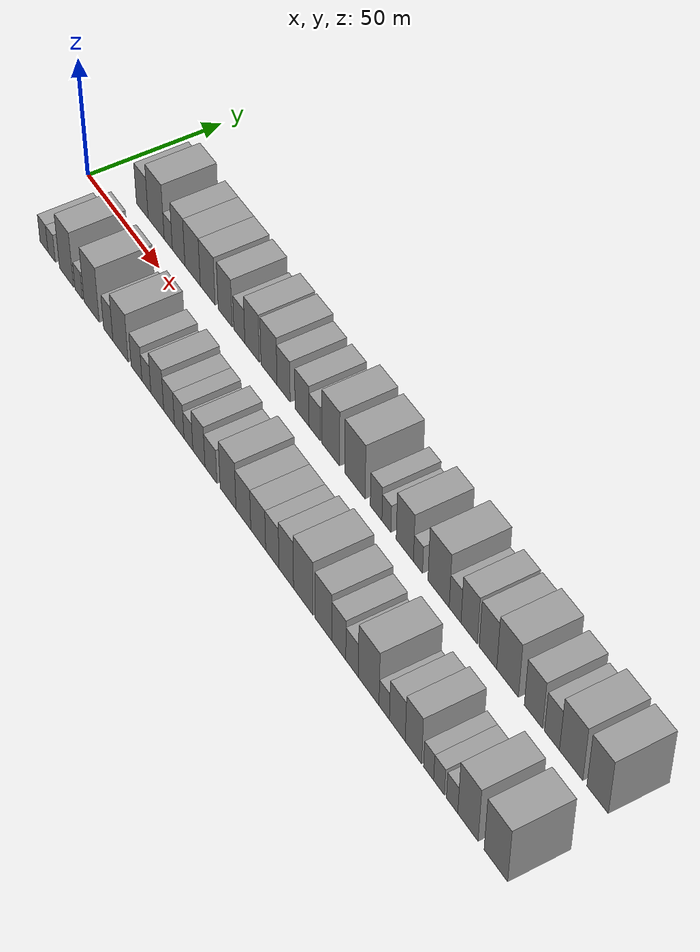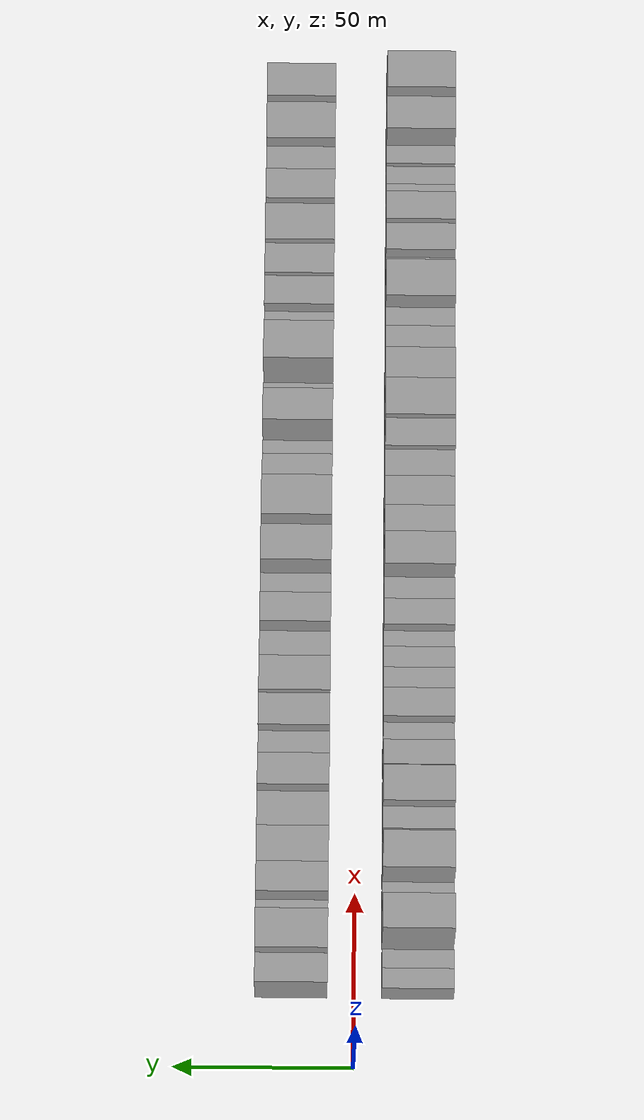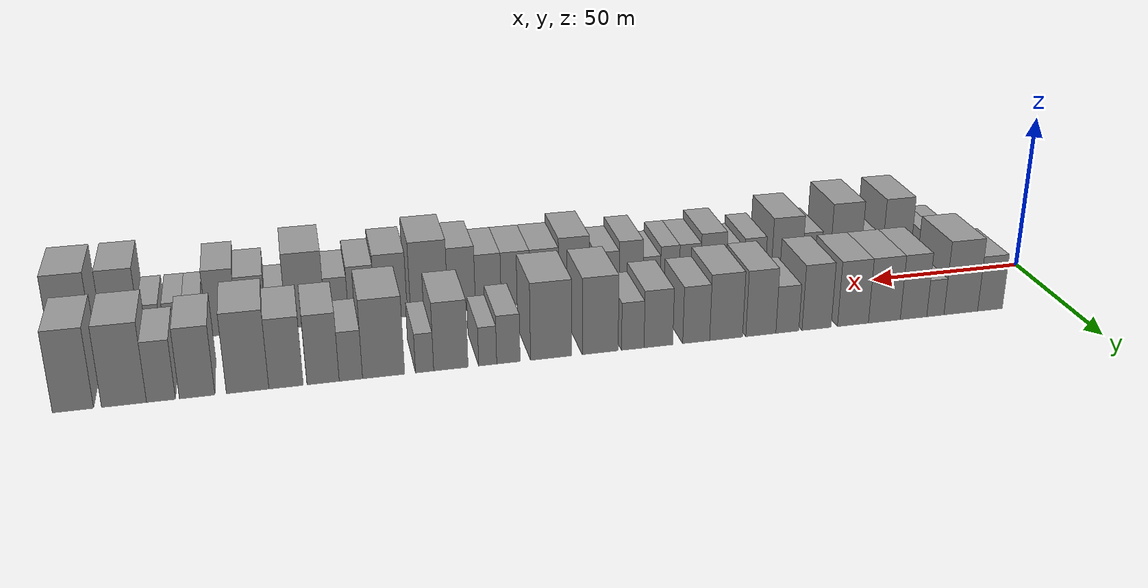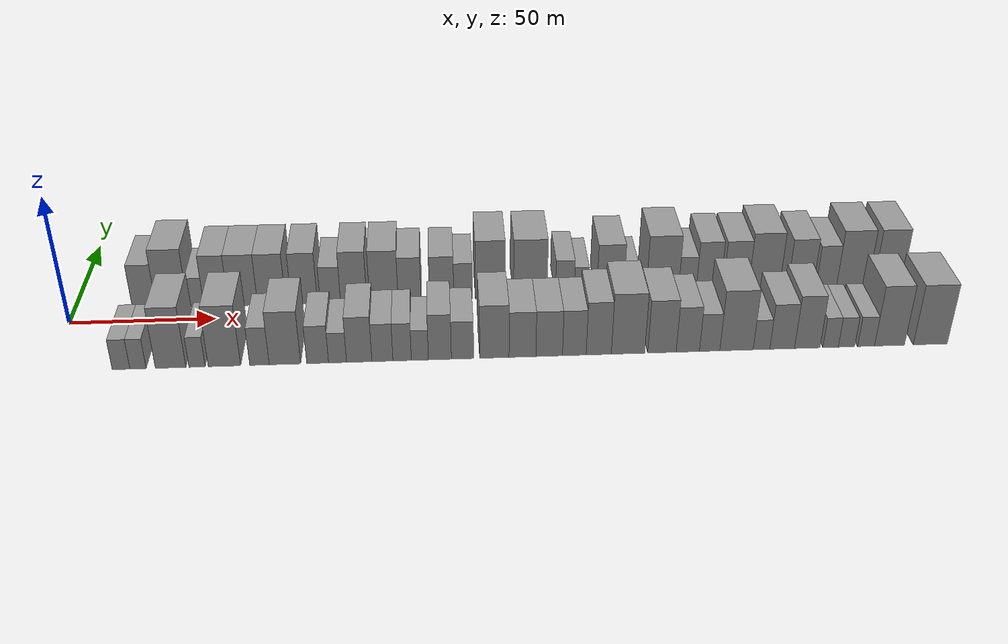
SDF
<sdf version="1.6">
 <world name="default">
  <scene>
   <sky><clouds><speed>12</speed></clouds></sky>
   <ambient>0.4 0.4 0.4 1</ambient>
   <background>0.7 0.7 0.7 1</background>
   <shadows>1</shadows>
  </scene>
  <gravity>0 0 -9.8066</gravity>
  <magnetic_field>6e-06 2.3e-05 -4.2e-05</magnetic_field>
  <physics default="0" name="default_physics" type="ode">
   <ode>
    <solver>
     <type>quick</type>
     <iters>10</iters>
     <sor>1.0</sor>
     <use_dynamic_moi_rescaling>0</use_dynamic_moi_rescaling>
    </solver>
    <constraints>
     <cfm>0</cfm>
     <erp>0.2</erp>
     <contact_max_correcting_vel>100</contact_max_correcting_vel>
     <contact_surface_layer>0.001</contact_surface_layer>
    </constraints>
   </ode>
   <max_step_size>0.004</max_step_size>
   <real_time_factor>1</real_time_factor>
   <real_time_update_rate>250</real_time_update_rate>
  </physics>
  <light name="sun" type="directional">
   <pose>0 0 10 0 0 0</pose>
   <diffuse>0.8 0.8 0.8 1</diffuse>
   <specular>0.2 0.2 0.2 1</specular>
   <attenuation>
    <range>1000</range>
    <constant>0.9</constant>
    <linear>0.01</linear>
    <quadratic>0.001</quadratic>
   </attenuation>
   <direction>-0.5 0.1 -0.9</direction>
  </light>
  <model name="building_1">
   <static>1</static>
   <pose>24.1019 17.5000 0 0.000000 0.000000 1.570796</pose>
   <link name="link">
    <pose>0 0 9.00 0 0 0</pose>
    <collision name="collision"><geometry><box><size>20.0000 8.2038 18.0000</size></box></geometry></collision>
    <visual name="visual">
     <cast_shadows>0</cast_shadows>
     <geometry><box><size>20.0000 8.2038 18.0000</size></box></geometry>
     <material>
      <script>
       <uri>model://grey_wall/materials/scripts</uri>
       <uri>model://grey_wall/materials/textures</uri>
       <name>vrc/grey_wall</name>
      </script>
     </material>
    </visual>
   </link>
  </model>
  <model name="building_2">
   <static>1</static>
   <pose>33.7322 17.5000 0 0.000000 0.000000 1.570796</pose>
   <link name="link">
    <pose>0 0 12.00 0 0 0</pose>
    <collision name="collision"><geometry><box><size>20.0000 11.0569 24.0000</size></box></geometry></collision>
    <visual name="visual">
     <cast_shadows>0</cast_shadows>
     <geometry><box><size>20.0000 11.0569 24.0000</size></box></geometry>
     <material>
      <script>
       <uri>model://grey_wall/materials/scripts</uri>
       <uri>model://grey_wall/materials/textures</uri>
       <name>vrc/grey_wall</name>
      </script>
     </material>
    </visual>
   </link>
  </model>
  <model name="building_3">
   <static>1</static>
   <pose>42.0603 17.5000 0 0.000000 0.000000 1.570796</pose>
   <link name="link">
    <pose>0 0 6.00 0 0 0</pose>
    <collision name="collision"><geometry><box><size>20.0000 5.5993 12.0000</size></box></geometry></collision>
    <visual name="visual">
     <cast_shadows>0</cast_shadows>
     <geometry><box><size>20.0000 5.5993 12.0000</size></box></geometry>
     <material>
      <script>
       <uri>model://grey_wall/materials/scripts</uri>
       <uri>model://grey_wall/materials/textures</uri>
       <name>vrc/grey_wall</name>
      </script>
     </material>
    </visual>
   </link>
  </model>
  <model name="building_4">
   <static>1</static>
   <pose>49.1462 17.5000 0 0.000000 0.000000 1.570796</pose>
   <link name="link">
    <pose>0 0 10.50 0 0 0</pose>
    <collision name="collision"><geometry><box><size>20.0000 8.5726 21.0000</size></box></geometry></collision>
    <visual name="visual">
     <cast_shadows>0</cast_shadows>
     <geometry><box><size>20.0000 8.5726 21.0000</size></box></geometry>
     <material>
      <script>
       <uri>model://grey_wall/materials/scripts</uri>
       <uri>model://grey_wall/materials/textures</uri>
       <name>vrc/grey_wall</name>
      </script>
     </material>
    </visual>
   </link>
  </model>
  <model name="building_5">
   <static>1</static>
   <pose>58.5434 17.5000 0 0.000000 0.000000 1.570796</pose>
   <link name="link">
    <pose>0 0 10.50 0 0 0</pose>
    <collision name="collision"><geometry><box><size>20.0000 10.2219 21.0000</size></box></geometry></collision>
    <visual name="visual">
     <cast_shadows>0</cast_shadows>
     <geometry><box><size>20.0000 10.2219 21.0000</size></box></geometry>
     <material>
      <script>
       <uri>model://grey_wall/materials/scripts</uri>
       <uri>model://grey_wall/materials/textures</uri>
       <name>vrc/grey_wall</name>
      </script>
     </material>
    </visual>
   </link>
  </model>
  <model name="building_6">
   <static>1</static>
   <pose>68.5634 17.5000 0 0.000000 0.000000 1.570796</pose>
   <link name="link">
    <pose>0 0 10.50 0 0 0</pose>
    <collision name="collision"><geometry><box><size>20.0000 9.8181 21.0000</size></box></geometry></collision>
    <visual name="visual">
     <cast_shadows>0</cast_shadows>
     <geometry><box><size>20.0000 9.8181 21.0000</size></box></geometry>
     <material>
      <script>
       <uri>model://grey_wall/materials/scripts</uri>
       <uri>model://grey_wall/materials/textures</uri>
       <name>vrc/grey_wall</name>
      </script>
     </material>
    </visual>
   </link>
  </model>
  <model name="building_7">
   <static>1</static>
   <pose>80.0497 17.5000 0 0.000000 0.000000 1.570796</pose>
   <link name="link">
    <pose>0 0 10.50 0 0 0</pose>
    <collision name="collision"><geometry><box><size>20.0000 9.1546 21.0000</size></box></geometry></collision>
    <visual name="visual">
     <cast_shadows>0</cast_shadows>
     <geometry><box><size>20.0000 9.1546 21.0000</size></box></geometry>
     <material>
      <script>
       <uri>model://grey_wall/materials/scripts</uri>
       <uri>model://grey_wall/materials/textures</uri>
       <name>vrc/grey_wall</name>
      </script>
     </material>
    </visual>
   </link>
  </model>
  <model name="building_8">
   <static>1</static>
   <pose>89.1927 17.5000 0 0.000000 0.000000 1.570796</pose>
   <link name="link">
    <pose>0 0 7.50 0 0 0</pose>
    <collision name="collision"><geometry><box><size>20.0000 7.1313 15.0000</size></box></geometry></collision>
    <visual name="visual">
     <cast_shadows>0</cast_shadows>
     <geometry><box><size>20.0000 7.1313 15.0000</size></box></geometry>
     <material>
      <script>
       <uri>model://grey_wall/materials/scripts</uri>
       <uri>model://grey_wall/materials/textures</uri>
       <name>vrc/grey_wall</name>
      </script>
     </material>
    </visual>
   </link>
  </model>
  <model name="building_9">
   <static>1</static>
   <pose>97.3884 17.5000 0 0.000000 0.000000 1.570796</pose>
   <link name="link">
    <pose>0 0 10.50 0 0 0</pose>
    <collision name="collision"><geometry><box><size>20.0000 9.2602 21.0000</size></box></geometry></collision>
    <visual name="visual">
     <cast_shadows>0</cast_shadows>
     <geometry><box><size>20.0000 9.2602 21.0000</size></box></geometry>
     <material>
      <script>
       <uri>model://grey_wall/materials/scripts</uri>
       <uri>model://grey_wall/materials/textures</uri>
       <name>vrc/grey_wall</name>
      </script>
     </material>
    </visual>
   </link>
  </model>
  <model name="building_10">
   <static>1</static>
   <pose>108.0430 17.5000 0 0.000000 0.000000 1.570796</pose>
   <link name="link">
    <pose>0 0 10.50 0 0 0</pose>
    <collision name="collision"><geometry><box><size>20.0000 10.0489 21.0000</size></box></geometry></collision>
    <visual name="visual">
     <cast_shadows>0</cast_shadows>
     <geometry><box><size>20.0000 10.0489 21.0000</size></box></geometry>
     <material>
      <script>
       <uri>model://grey_wall/materials/scripts</uri>
       <uri>model://grey_wall/materials/textures</uri>
       <name>vrc/grey_wall</name>
      </script>
     </material>
    </visual>
   </link>
  </model>
  <model name="building_11">
   <static>1</static>
   <pose>117.1364 17.5000 0 0.000000 0.000000 1.570796</pose>
   <link name="link">
    <pose>0 0 9.00 0 0 0</pose>
    <collision name="collision"><geometry><box><size>20.0000 8.1379 18.0000</size></box></geometry></collision>
    <visual name="visual">
     <cast_shadows>0</cast_shadows>
     <geometry><box><size>20.0000 8.1379 18.0000</size></box></geometry>
     <material>
      <script>
       <uri>model://grey_wall/materials/scripts</uri>
       <uri>model://grey_wall/materials/textures</uri>
       <name>vrc/grey_wall</name>
      </script>
     </material>
    </visual>
   </link>
  </model>
  <model name="building_12">
   <static>1</static>
   <pose>128.4967 17.5000 0 0.000000 0.000000 1.570796</pose>
   <link name="link">
    <pose>0 0 9.00 0 0 0</pose>
    <collision name="collision"><geometry><box><size>20.0000 8.5828 18.0000</size></box></geometry></collision>
    <visual name="visual">
     <cast_shadows>0</cast_shadows>
     <geometry><box><size>20.0000 8.5828 18.0000</size></box></geometry>
     <material>
      <script>
       <uri>model://grey_wall/materials/scripts</uri>
       <uri>model://grey_wall/materials/textures</uri>
       <name>vrc/grey_wall</name>
      </script>
     </material>
    </visual>
   </link>
  </model>
  <model name="building_13">
   <static>1</static>
   <pose>136.1213 17.5000 0 0.000000 0.000000 1.570796</pose>
   <link name="link">
    <pose>0 0 7.50 0 0 0</pose>
    <collision name="collision"><geometry><box><size>20.0000 6.6663 15.0000</size></box></geometry></collision>
    <visual name="visual">
     <cast_shadows>0</cast_shadows>
     <geometry><box><size>20.0000 6.6663 15.0000</size></box></geometry>
     <material>
      <script>
       <uri>model://grey_wall/materials/scripts</uri>
       <uri>model://grey_wall/materials/textures</uri>
       <name>vrc/grey_wall</name>
      </script>
     </material>
    </visual>
   </link>
  </model>
  <model name="building_14">
   <static>1</static>
   <pose>145.7242 17.5000 0 0.000000 0.000000 1.570796</pose>
   <link name="link">
    <pose>0 0 12.00 0 0 0</pose>
    <collision name="collision"><geometry><box><size>20.0000 10.5395 24.0000</size></box></geometry></collision>
    <visual name="visual">
     <cast_shadows>0</cast_shadows>
     <geometry><box><size>20.0000 10.5395 24.0000</size></box></geometry>
     <material>
      <script>
       <uri>model://grey_wall/materials/scripts</uri>
       <uri>model://grey_wall/materials/textures</uri>
       <name>vrc/grey_wall</name>
      </script>
     </material>
    </visual>
   </link>
  </model>
  <model name="building_15">
   <static>1</static>
   <pose>159.9695 17.5000 0 0.000000 0.000000 1.570796</pose>
   <link name="link">
    <pose>0 0 12.00 0 0 0</pose>
    <collision name="collision"><geometry><box><size>20.0000 11.9512 24.0000</size></box></geometry></collision>
    <visual name="visual">
     <cast_shadows>0</cast_shadows>
     <geometry><box><size>20.0000 11.9512 24.0000</size></box></geometry>
     <material>
      <script>
       <uri>model://grey_wall/materials/scripts</uri>
       <uri>model://grey_wall/materials/textures</uri>
       <name>vrc/grey_wall</name>
      </script>
     </material>
    </visual>
   </link>
  </model>
  <model name="building_16">
   <static>1</static>
   <pose>172.2818 17.5000 0 0.000000 0.000000 1.570796</pose>
   <link name="link">
    <pose>0 0 7.50 0 0 0</pose>
    <collision name="collision"><geometry><box><size>20.0000 6.6733 15.0000</size></box></geometry></collision>
    <visual name="visual">
     <cast_shadows>0</cast_shadows>
     <geometry><box><size>20.0000 6.6733 15.0000</size></box></geometry>
     <material>
      <script>
       <uri>model://grey_wall/materials/scripts</uri>
       <uri>model://grey_wall/materials/textures</uri>
       <name>vrc/grey_wall</name>
      </script>
     </material>
    </visual>
   </link>
  </model>
  <model name="building_17">
   <static>1</static>
   <pose>178.1721 17.5000 0 0.000000 0.000000 1.570796</pose>
   <link name="link">
    <pose>0 0 6.00 0 0 0</pose>
    <collision name="collision"><geometry><box><size>20.0000 5.1073 12.0000</size></box></geometry></collision>
    <visual name="visual">
     <cast_shadows>0</cast_shadows>
     <geometry><box><size>20.0000 5.1073 12.0000</size></box></geometry>
     <material>
      <script>
       <uri>model://grey_wall/materials/scripts</uri>
       <uri>model://grey_wall/materials/textures</uri>
       <name>vrc/grey_wall</name>
      </script>
     </material>
    </visual>
   </link>
  </model>
  <model name="building_18">
   <static>1</static>
   <pose>188.5494 17.5000 0 0.000000 0.000000 1.570796</pose>
   <link name="link">
    <pose>0 0 10.50 0 0 0</pose>
    <collision name="collision"><geometry><box><size>20.0000 9.6472 21.0000</size></box></geometry></collision>
    <visual name="visual">
     <cast_shadows>0</cast_shadows>
     <geometry><box><size>20.0000 9.6472 21.0000</size></box></geometry>
     <material>
      <script>
       <uri>model://grey_wall/materials/scripts</uri>
       <uri>model://grey_wall/materials/textures</uri>
       <name>vrc/grey_wall</name>
      </script>
     </material>
    </visual>
   </link>
  </model>
  <model name="building_19">
   <static>1</static>
   <pose>195.9077 17.5000 0 0.000000 0.000000 1.570796</pose>
   <link name="link">
    <pose>0 0 6.00 0 0 0</pose>
    <collision name="collision"><geometry><box><size>20.0000 5.0694 12.0000</size></box></geometry></collision>
    <visual name="visual">
     <cast_shadows>0</cast_shadows>
     <geometry><box><size>20.0000 5.0694 12.0000</size></box></geometry>
     <material>
      <script>
       <uri>model://grey_wall/materials/scripts</uri>
       <uri>model://grey_wall/materials/textures</uri>
       <name>vrc/grey_wall</name>
      </script>
     </material>
    </visual>
   </link>
  </model>
  <model name="building_20">
   <static>1</static>
   <pose>207.2288 17.5000 0 0.000000 0.000000 1.570796</pose>
   <link name="link">
    <pose>0 0 12.00 0 0 0</pose>
    <collision name="collision"><geometry><box><size>20.0000 11.5728 24.0000</size></box></geometry></collision>
    <visual name="visual">
     <cast_shadows>0</cast_shadows>
     <geometry><box><size>20.0000 11.5728 24.0000</size></box></geometry>
     <material>
      <script>
       <uri>model://grey_wall/materials/scripts</uri>
       <uri>model://grey_wall/materials/textures</uri>
       <name>vrc/grey_wall</name>
      </script>
     </material>
    </visual>
   </link>
  </model>
  <model name="building_21">
   <static>1</static>
   <pose>216.1947 17.5000 0 0.000000 0.000000 1.570796</pose>
   <link name="link">
    <pose>0 0 7.50 0 0 0</pose>
    <collision name="collision"><geometry><box><size>20.0000 6.3590 15.0000</size></box></geometry></collision>
    <visual name="visual">
     <cast_shadows>0</cast_shadows>
     <geometry><box><size>20.0000 6.3590 15.0000</size></box></geometry>
     <material>
      <script>
       <uri>model://grey_wall/materials/scripts</uri>
       <uri>model://grey_wall/materials/textures</uri>
       <name>vrc/grey_wall</name>
      </script>
     </material>
    </visual>
   </link>
  </model>
  <model name="building_22">
   <static>1</static>
   <pose>223.7285 17.5000 0 0.000000 0.000000 1.570796</pose>
   <link name="link">
    <pose>0 0 10.50 0 0 0</pose>
    <collision name="collision"><geometry><box><size>20.0000 8.7087 21.0000</size></box></geometry></collision>
    <visual name="visual">
     <cast_shadows>0</cast_shadows>
     <geometry><box><size>20.0000 8.7087 21.0000</size></box></geometry>
     <material>
      <script>
       <uri>model://grey_wall/materials/scripts</uri>
       <uri>model://grey_wall/materials/textures</uri>
       <name>vrc/grey_wall</name>
      </script>
     </material>
    </visual>
   </link>
  </model>
  <model name="building_23">
   <static>1</static>
   <pose>233.6760 17.5000 0 0.000000 0.000000 1.570796</pose>
   <link name="link">
    <pose>0 0 10.50 0 0 0</pose>
    <collision name="collision"><geometry><box><size>20.0000 9.1863 21.0000</size></box></geometry></collision>
    <visual name="visual">
     <cast_shadows>0</cast_shadows>
     <geometry><box><size>20.0000 9.1863 21.0000</size></box></geometry>
     <material>
      <script>
       <uri>model://grey_wall/materials/scripts</uri>
       <uri>model://grey_wall/materials/textures</uri>
       <name>vrc/grey_wall</name>
      </script>
     </material>
    </visual>
   </link>
  </model>
  <model name="building_24">
   <static>1</static>
   <pose>243.8894 17.5000 0 0.000000 0.000000 1.570796</pose>
   <link name="link">
    <pose>0 0 12.00 0 0 0</pose>
    <collision name="collision"><geometry><box><size>20.0000 11.2405 24.0000</size></box></geometry></collision>
    <visual name="visual">
     <cast_shadows>0</cast_shadows>
     <geometry><box><size>20.0000 11.2405 24.0000</size></box></geometry>
     <material>
      <script>
       <uri>model://grey_wall/materials/scripts</uri>
       <uri>model://grey_wall/materials/textures</uri>
       <name>vrc/grey_wall</name>
      </script>
     </material>
    </visual>
   </link>
  </model>
  <model name="building_25">
   <static>1</static>
   <pose>257.1364 17.5000 0 0.000000 0.000000 1.570796</pose>
   <link name="link">
    <pose>0 0 10.50 0 0 0</pose>
    <collision name="collision"><geometry><box><size>20.0000 9.2535 21.0000</size></box></geometry></collision>
    <visual name="visual">
     <cast_shadows>0</cast_shadows>
     <geometry><box><size>20.0000 9.2535 21.0000</size></box></geometry>
     <material>
      <script>
       <uri>model://grey_wall/materials/scripts</uri>
       <uri>model://grey_wall/materials/textures</uri>
       <name>vrc/grey_wall</name>
      </script>
     </material>
    </visual>
   </link>
  </model>
  <model name="building_26">
   <static>1</static>
   <pose>266.4977 17.5000 0 0.000000 0.000000 1.570796</pose>
   <link name="link">
    <pose>0 0 9.00 0 0 0</pose>
    <collision name="collision"><geometry><box><size>20.0000 7.4690 18.0000</size></box></geometry></collision>
    <visual name="visual">
     <cast_shadows>0</cast_shadows>
     <geometry><box><size>20.0000 7.4690 18.0000</size></box></geometry>
     <material>
      <script>
       <uri>model://grey_wall/materials/scripts</uri>
       <uri>model://grey_wall/materials/textures</uri>
       <name>vrc/grey_wall</name>
      </script>
     </material>
    </visual>
   </link>
  </model>
  <model name="building_27">
   <static>1</static>
   <pose>275.9784 17.5000 0 0.000000 0.000000 1.570796</pose>
   <link name="link">
    <pose>0 0 12.00 0 0 0</pose>
    <collision name="collision"><geometry><box><size>20.0000 11.4924 24.0000</size></box></geometry></collision>
    <visual name="visual">
     <cast_shadows>0</cast_shadows>
     <geometry><box><size>20.0000 11.4924 24.0000</size></box></geometry>
     <material>
      <script>
       <uri>model://grey_wall/materials/scripts</uri>
       <uri>model://grey_wall/materials/textures</uri>
       <name>vrc/grey_wall</name>
      </script>
     </material>
    </visual>
   </link>
  </model>
  <model name="building_28">
   <static>1</static>
   <pose>288.9114 17.5000 0 0.000000 0.000000 1.570796</pose>
   <link name="link">
    <pose>0 0 12.00 0 0 0</pose>
    <collision name="collision"><geometry><box><size>20.0000 10.3736 24.0000</size></box></geometry></collision>
    <visual name="visual">
     <cast_shadows>0</cast_shadows>
     <geometry><box><size>20.0000 10.3736 24.0000</size></box></geometry>
     <material>
      <script>
       <uri>model://grey_wall/materials/scripts</uri>
       <uri>model://grey_wall/materials/textures</uri>
       <name>vrc/grey_wall</name>
      </script>
     </material>
    </visual>
   </link>
  </model>
  <model name="building_29">
   <static>1</static>
   <pose>22.8776 -17.5000 0 0.000000 0.000000 1.570796</pose>
   <link name="link">
    <pose>0 0 6.00 0 0 0</pose>
    <collision name="collision"><geometry><box><size>20.0000 5.7553 12.0000</size></box></geometry></collision>
    <visual name="visual">
     <cast_shadows>0</cast_shadows>
     <geometry><box><size>20.0000 5.7553 12.0000</size></box></geometry>
     <material>
      <script>
       <uri>model://grey_wall/materials/scripts</uri>
       <uri>model://grey_wall/materials/textures</uri>
       <name>vrc/grey_wall</name>
      </script>
     </material>
    </visual>
   </link>
  </model>
  <model name="building_30">
   <static>1</static>
   <pose>28.3768 -17.5000 0 0.000000 0.000000 1.570796</pose>
   <link name="link">
    <pose>0 0 6.00 0 0 0</pose>
    <collision name="collision"><geometry><box><size>20.0000 5.2430 12.0000</size></box></geometry></collision>
    <visual name="visual">
     <cast_shadows>0</cast_shadows>
     <geometry><box><size>20.0000 5.2430 12.0000</size></box></geometry>
     <material>
      <script>
       <uri>model://grey_wall/materials/scripts</uri>
       <uri>model://grey_wall/materials/textures</uri>
       <name>vrc/grey_wall</name>
      </script>
     </material>
    </visual>
   </link>
  </model>
  <model name="building_31">
   <static>1</static>
   <pose>38.9669 -17.5000 0 0.000000 0.000000 1.570796</pose>
   <link name="link">
    <pose>0 0 12.00 0 0 0</pose>
    <collision name="collision"><geometry><box><size>20.0000 9.9373 24.0000</size></box></geometry></collision>
    <visual name="visual">
     <cast_shadows>0</cast_shadows>
     <geometry><box><size>20.0000 9.9373 24.0000</size></box></geometry>
     <material>
      <script>
       <uri>model://grey_wall/materials/scripts</uri>
       <uri>model://grey_wall/materials/textures</uri>
       <name>vrc/grey_wall</name>
      </script>
     </material>
    </visual>
   </link>
  </model>
  <model name="building_32">
   <static>1</static>
   <pose>47.5842 -17.5000 0 0.000000 0.000000 1.570796</pose>
   <link name="link">
    <pose>0 0 6.00 0 0 0</pose>
    <collision name="collision"><geometry><box><size>20.0000 5.2973 12.0000</size></box></geometry></collision>
    <visual name="visual">
     <cast_shadows>0</cast_shadows>
     <geometry><box><size>20.0000 5.2973 12.0000</size></box></geometry>
     <material>
      <script>
       <uri>model://grey_wall/materials/scripts</uri>
       <uri>model://grey_wall/materials/textures</uri>
       <name>vrc/grey_wall</name>
      </script>
     </material>
    </visual>
   </link>
  </model>
  <model name="building_33">
   <static>1</static>
   <pose>56.5211 -17.5000 0 0.000000 0.000000 1.570796</pose>
   <link name="link">
    <pose>0 0 12.00 0 0 0</pose>
    <collision name="collision"><geometry><box><size>20.0000 10.5765 24.0000</size></box></geometry></collision>
    <visual name="visual">
     <cast_shadows>0</cast_shadows>
     <geometry><box><size>20.0000 10.5765 24.0000</size></box></geometry>
     <material>
      <script>
       <uri>model://grey_wall/materials/scripts</uri>
       <uri>model://grey_wall/materials/textures</uri>
       <name>vrc/grey_wall</name>
      </script>
     </material>
    </visual>
   </link>
  </model>
  <model name="building_34">
   <static>1</static>
   <pose>67.9942 -17.5000 0 0.000000 0.000000 1.570796</pose>
   <link name="link">
    <pose>0 0 7.50 0 0 0</pose>
    <collision name="collision"><geometry><box><size>20.0000 6.3697 15.0000</size></box></geometry></collision>
    <visual name="visual">
     <cast_shadows>0</cast_shadows>
     <geometry><box><size>20.0000 6.3697 15.0000</size></box></geometry>
     <material>
      <script>
       <uri>model://grey_wall/materials/scripts</uri>
       <uri>model://grey_wall/materials/textures</uri>
       <name>vrc/grey_wall</name>
      </script>
     </material>
    </visual>
   </link>
  </model>
  <model name="building_35">
   <static>1</static>
   <pose>76.3302 -17.5000 0 0.000000 0.000000 1.570796</pose>
   <link name="link">
    <pose>0 0 10.50 0 0 0</pose>
    <collision name="collision"><geometry><box><size>20.0000 10.3023 21.0000</size></box></geometry></collision>
    <visual name="visual">
     <cast_shadows>0</cast_shadows>
     <geometry><box><size>20.0000 10.3023 21.0000</size></box></geometry>
     <material>
      <script>
       <uri>model://grey_wall/materials/scripts</uri>
       <uri>model://grey_wall/materials/textures</uri>
       <name>vrc/grey_wall</name>
      </script>
     </material>
    </visual>
   </link>
  </model>
  <model name="building_36">
   <static>1</static>
   <pose>87.0655 -17.5000 0 0.000000 0.000000 1.570796</pose>
   <link name="link">
    <pose>0 0 7.50 0 0 0</pose>
    <collision name="collision"><geometry><box><size>20.0000 7.1682 15.0000</size></box></geometry></collision>
    <visual name="visual">
     <cast_shadows>0</cast_shadows>
     <geometry><box><size>20.0000 7.1682 15.0000</size></box></geometry>
     <material>
      <script>
       <uri>model://grey_wall/materials/scripts</uri>
       <uri>model://grey_wall/materials/textures</uri>
       <name>vrc/grey_wall</name>
      </script>
     </material>
    </visual>
   </link>
  </model>
  <model name="building_37">
   <static>1</static>
   <pose>93.6011 -17.5000 0 0.000000 0.000000 1.570796</pose>
   <link name="link">
    <pose>0 0 6.00 0 0 0</pose>
    <collision name="collision"><geometry><box><size>20.0000 5.9031 12.0000</size></box></geometry></collision>
    <visual name="visual">
     <cast_shadows>0</cast_shadows>
     <geometry><box><size>20.0000 5.9031 12.0000</size></box></geometry>
     <material>
      <script>
       <uri>model://grey_wall/materials/scripts</uri>
       <uri>model://grey_wall/materials/textures</uri>
       <name>vrc/grey_wall</name>
      </script>
     </material>
    </visual>
   </link>
  </model>
  <model name="building_38">
   <static>1</static>
   <pose>100.7334 -17.5000 0 0.000000 0.000000 1.570796</pose>
   <link name="link">
    <pose>0 0 9.00 0 0 0</pose>
    <collision name="collision"><geometry><box><size>20.0000 8.3615 18.0000</size></box></geometry></collision>
    <visual name="visual">
     <cast_shadows>0</cast_shadows>
     <geometry><box><size>20.0000 8.3615 18.0000</size></box></geometry>
     <material>
      <script>
       <uri>model://grey_wall/materials/scripts</uri>
       <uri>model://grey_wall/materials/textures</uri>
       <name>vrc/grey_wall</name>
      </script>
     </material>
    </visual>
   </link>
  </model>
  <model name="building_39">
   <static>1</static>
   <pose>108.3906 -17.5000 0 0.000000 0.000000 1.570796</pose>
   <link name="link">
    <pose>0 0 7.50 0 0 0</pose>
    <collision name="collision"><geometry><box><size>20.0000 6.9527 15.0000</size></box></geometry></collision>
    <visual name="visual">
     <cast_shadows>0</cast_shadows>
     <geometry><box><size>20.0000 6.9527 15.0000</size></box></geometry>
     <material>
      <script>
       <uri>model://grey_wall/materials/scripts</uri>
       <uri>model://grey_wall/materials/textures</uri>
       <name>vrc/grey_wall</name>
      </script>
     </material>
    </visual>
   </link>
  </model>
  <model name="building_40">
   <static>1</static>
   <pose>114.9209 -17.5000 0 0.000000 0.000000 1.570796</pose>
   <link name="link">
    <pose>0 0 7.50 0 0 0</pose>
    <collision name="collision"><geometry><box><size>20.0000 6.1078 15.0000</size></box></geometry></collision>
    <visual name="visual">
     <cast_shadows>0</cast_shadows>
     <geometry><box><size>20.0000 6.1078 15.0000</size></box></geometry>
     <material>
      <script>
       <uri>model://grey_wall/materials/scripts</uri>
       <uri>model://grey_wall/materials/textures</uri>
       <name>vrc/grey_wall</name>
      </script>
     </material>
    </visual>
   </link>
  </model>
  <model name="building_41">
   <static>1</static>
   <pose>120.7878 -17.5000 0 0.000000 0.000000 1.570796</pose>
   <link name="link">
    <pose>0 0 6.00 0 0 0</pose>
    <collision name="collision"><geometry><box><size>20.0000 5.6261 12.0000</size></box></geometry></collision>
    <visual name="visual">
     <cast_shadows>0</cast_shadows>
     <geometry><box><size>20.0000 5.6261 12.0000</size></box></geometry>
     <material>
      <script>
       <uri>model://grey_wall/materials/scripts</uri>
       <uri>model://grey_wall/materials/textures</uri>
       <name>vrc/grey_wall</name>
      </script>
     </material>
    </visual>
   </link>
  </model>
  <model name="building_42">
   <static>1</static>
   <pose>127.4109 -17.5000 0 0.000000 0.000000 1.570796</pose>
   <link name="link">
    <pose>0 0 9.00 0 0 0</pose>
    <collision name="collision"><geometry><box><size>20.0000 7.6200 18.0000</size></box></geometry></collision>
    <visual name="visual">
     <cast_shadows>0</cast_shadows>
     <geometry><box><size>20.0000 7.6200 18.0000</size></box></geometry>
     <material>
      <script>
       <uri>model://grey_wall/materials/scripts</uri>
       <uri>model://grey_wall/materials/textures</uri>
       <name>vrc/grey_wall</name>
      </script>
     </material>
    </visual>
   </link>
  </model>
  <model name="building_43">
   <static>1</static>
   <pose>134.9280 -17.5000 0 0.000000 0.000000 1.570796</pose>
   <link name="link">
    <pose>0 0 7.50 0 0 0</pose>
    <collision name="collision"><geometry><box><size>20.0000 7.4143 15.0000</size></box></geometry></collision>
    <visual name="visual">
     <cast_shadows>0</cast_shadows>
     <geometry><box><size>20.0000 7.4143 15.0000</size></box></geometry>
     <material>
      <script>
       <uri>model://grey_wall/materials/scripts</uri>
       <uri>model://grey_wall/materials/textures</uri>
       <name>vrc/grey_wall</name>
      </script>
     </material>
    </visual>
   </link>
  </model>
  <model name="building_44">
   <static>1</static>
   <pose>145.4943 -17.5000 0 0.000000 0.000000 1.570796</pose>
   <link name="link">
    <pose>0 0 10.50 0 0 0</pose>
    <collision name="collision"><geometry><box><size>20.0000 9.7183 21.0000</size></box></geometry></collision>
    <visual name="visual">
     <cast_shadows>0</cast_shadows>
     <geometry><box><size>20.0000 9.7183 21.0000</size></box></geometry>
     <material>
      <script>
       <uri>model://grey_wall/materials/scripts</uri>
       <uri>model://grey_wall/materials/textures</uri>
       <name>vrc/grey_wall</name>
      </script>
     </material>
    </visual>
   </link>
  </model>
  <model name="building_45">
   <static>1</static>
   <pose>154.8388 -17.5000 0 0.000000 0.000000 1.570796</pose>
   <link name="link">
    <pose>0 0 9.00 0 0 0</pose>
    <collision name="collision"><geometry><box><size>20.0000 8.9707 18.0000</size></box></geometry></collision>
    <visual name="visual">
     <cast_shadows>0</cast_shadows>
     <geometry><box><size>20.0000 8.9707 18.0000</size></box></geometry>
     <material>
      <script>
       <uri>model://grey_wall/materials/scripts</uri>
       <uri>model://grey_wall/materials/textures</uri>
       <name>vrc/grey_wall</name>
      </script>
     </material>
    </visual>
   </link>
  </model>
  <model name="building_46">
   <static>1</static>
   <pose>163.7618 -17.5000 0 0.000000 0.000000 1.570796</pose>
   <link name="link">
    <pose>0 0 9.00 0 0 0</pose>
    <collision name="collision"><geometry><box><size>20.0000 8.8752 18.0000</size></box></geometry></collision>
    <visual name="visual">
     <cast_shadows>0</cast_shadows>
     <geometry><box><size>20.0000 8.8752 18.0000</size></box></geometry>
     <material>
      <script>
       <uri>model://grey_wall/materials/scripts</uri>
       <uri>model://grey_wall/materials/textures</uri>
       <name>vrc/grey_wall</name>
      </script>
     </material>
    </visual>
   </link>
  </model>
  <model name="building_47">
   <static>1</static>
   <pose>172.1577 -17.5000 0 0.000000 0.000000 1.570796</pose>
   <link name="link">
    <pose>0 0 9.00 0 0 0</pose>
    <collision name="collision"><geometry><box><size>20.0000 7.9167 18.0000</size></box></geometry></collision>
    <visual name="visual">
     <cast_shadows>0</cast_shadows>
     <geometry><box><size>20.0000 7.9167 18.0000</size></box></geometry>
     <material>
      <script>
       <uri>model://grey_wall/materials/scripts</uri>
       <uri>model://grey_wall/materials/textures</uri>
       <name>vrc/grey_wall</name>
      </script>
     </material>
    </visual>
   </link>
  </model>
  <model name="building_48">
   <static>1</static>
   <pose>180.3307 -17.5000 0 0.000000 0.000000 1.570796</pose>
   <link name="link">
    <pose>0 0 10.50 0 0 0</pose>
    <collision name="collision"><geometry><box><size>20.0000 8.4293 21.0000</size></box></geometry></collision>
    <visual name="visual">
     <cast_shadows>0</cast_shadows>
     <geometry><box><size>20.0000 8.4293 21.0000</size></box></geometry>
     <material>
      <script>
       <uri>model://grey_wall/materials/scripts</uri>
       <uri>model://grey_wall/materials/textures</uri>
       <name>vrc/grey_wall</name>
      </script>
     </material>
    </visual>
   </link>
  </model>
  <model name="building_49">
   <static>1</static>
   <pose>190.1594 -17.5000 0 0.000000 0.000000 1.570796</pose>
   <link name="link">
    <pose>0 0 12.00 0 0 0</pose>
    <collision name="collision"><geometry><box><size>20.0000 11.2281 24.0000</size></box></geometry></collision>
    <visual name="visual">
     <cast_shadows>0</cast_shadows>
     <geometry><box><size>20.0000 11.2281 24.0000</size></box></geometry>
     <material>
      <script>
       <uri>model://grey_wall/materials/scripts</uri>
       <uri>model://grey_wall/materials/textures</uri>
       <name>vrc/grey_wall</name>
      </script>
     </material>
    </visual>
   </link>
  </model>
  <model name="building_50">
   <static>1</static>
   <pose>201.5630 -17.5000 0 0.000000 0.000000 1.570796</pose>
   <link name="link">
    <pose>0 0 10.50 0 0 0</pose>
    <collision name="collision"><geometry><box><size>20.0000 9.5789 21.0000</size></box></geometry></collision>
    <visual name="visual">
     <cast_shadows>0</cast_shadows>
     <geometry><box><size>20.0000 9.5789 21.0000</size></box></geometry>
     <material>
      <script>
       <uri>model://grey_wall/materials/scripts</uri>
       <uri>model://grey_wall/materials/textures</uri>
       <name>vrc/grey_wall</name>
      </script>
     </material>
    </visual>
   </link>
  </model>
  <model name="building_51">
   <static>1</static>
   <pose>210.2714 -17.5000 0 0.000000 0.000000 1.570796</pose>
   <link name="link">
    <pose>0 0 9.00 0 0 0</pose>
    <collision name="collision"><geometry><box><size>20.0000 7.8379 18.0000</size></box></geometry></collision>
    <visual name="visual">
     <cast_shadows>0</cast_shadows>
     <geometry><box><size>20.0000 7.8379 18.0000</size></box></geometry>
     <material>
      <script>
       <uri>model://grey_wall/materials/scripts</uri>
       <uri>model://grey_wall/materials/textures</uri>
       <name>vrc/grey_wall</name>
      </script>
     </material>
    </visual>
   </link>
  </model>
  <model name="building_52">
   <static>1</static>
   <pose>217.6264 -17.5000 0 0.000000 0.000000 1.570796</pose>
   <link name="link">
    <pose>0 0 7.50 0 0 0</pose>
    <collision name="collision"><geometry><box><size>20.0000 6.8721 15.0000</size></box></geometry></collision>
    <visual name="visual">
     <cast_shadows>0</cast_shadows>
     <geometry><box><size>20.0000 6.8721 15.0000</size></box></geometry>
     <material>
      <script>
       <uri>model://grey_wall/materials/scripts</uri>
       <uri>model://grey_wall/materials/textures</uri>
       <name>vrc/grey_wall</name>
      </script>
     </material>
    </visual>
   </link>
  </model>
  <model name="building_53">
   <static>1</static>
   <pose>226.7164 -17.5000 0 0.000000 0.000000 1.570796</pose>
   <link name="link">
    <pose>0 0 12.00 0 0 0</pose>
    <collision name="collision"><geometry><box><size>20.0000 11.3078 24.0000</size></box></geometry></collision>
    <visual name="visual">
     <cast_shadows>0</cast_shadows>
     <geometry><box><size>20.0000 11.3078 24.0000</size></box></geometry>
     <material>
      <script>
       <uri>model://grey_wall/materials/scripts</uri>
       <uri>model://grey_wall/materials/textures</uri>
       <name>vrc/grey_wall</name>
      </script>
     </material>
    </visual>
   </link>
  </model>
  <model name="building_54">
   <static>1</static>
   <pose>235.1718 -17.5000 0 0.000000 0.000000 1.570796</pose>
   <link name="link">
    <pose>0 0 6.00 0 0 0</pose>
    <collision name="collision"><geometry><box><size>20.0000 5.6031 12.0000</size></box></geometry></collision>
    <visual name="visual">
     <cast_shadows>0</cast_shadows>
     <geometry><box><size>20.0000 5.6031 12.0000</size></box></geometry>
     <material>
      <script>
       <uri>model://grey_wall/materials/scripts</uri>
       <uri>model://grey_wall/materials/textures</uri>
       <name>vrc/grey_wall</name>
      </script>
     </material>
    </visual>
   </link>
  </model>
  <model name="building_55">
   <static>1</static>
   <pose>242.1747 -17.5000 0 0.000000 0.000000 1.570796</pose>
   <link name="link">
    <pose>0 0 9.00 0 0 0</pose>
    <collision name="collision"><geometry><box><size>20.0000 8.4026 18.0000</size></box></geometry></collision>
    <visual name="visual">
     <cast_shadows>0</cast_shadows>
     <geometry><box><size>20.0000 8.4026 18.0000</size></box></geometry>
     <material>
      <script>
       <uri>model://grey_wall/materials/scripts</uri>
       <uri>model://grey_wall/materials/textures</uri>
       <name>vrc/grey_wall</name>
      </script>
     </material>
    </visual>
   </link>
  </model>
  <model name="building_56">
   <static>1</static>
   <pose>250.6954 -17.5000 0 0.000000 0.000000 1.570796</pose>
   <link name="link">
    <pose>0 0 10.50 0 0 0</pose>
    <collision name="collision"><geometry><box><size>20.0000 8.6389 21.0000</size></box></geometry></collision>
    <visual name="visual">
     <cast_shadows>0</cast_shadows>
     <geometry><box><size>20.0000 8.6389 21.0000</size></box></geometry>
     <material>
      <script>
       <uri>model://grey_wall/materials/scripts</uri>
       <uri>model://grey_wall/materials/textures</uri>
       <name>vrc/grey_wall</name>
      </script>
     </material>
    </visual>
   </link>
  </model>
  <model name="building_57">
   <static>1</static>
   <pose>258.6454 -17.5000 0 0.000000 0.000000 1.570796</pose>
   <link name="link">
    <pose>0 0 6.00 0 0 0</pose>
    <collision name="collision"><geometry><box><size>20.0000 5.2610 12.0000</size></box></geometry></collision>
    <visual name="visual">
     <cast_shadows>0</cast_shadows>
     <geometry><box><size>20.0000 5.2610 12.0000</size></box></geometry>
     <material>
      <script>
       <uri>model://grey_wall/materials/scripts</uri>
       <uri>model://grey_wall/materials/textures</uri>
       <name>vrc/grey_wall</name>
      </script>
     </material>
    </visual>
   </link>
  </model>
  <model name="building_58">
   <static>1</static>
   <pose>264.0658 -17.5000 0 0.000000 0.000000 1.570796</pose>
   <link name="link">
    <pose>0 0 6.00 0 0 0</pose>
    <collision name="collision"><geometry><box><size>20.0000 5.5798 12.0000</size></box></geometry></collision>
    <visual name="visual">
     <cast_shadows>0</cast_shadows>
     <geometry><box><size>20.0000 5.5798 12.0000</size></box></geometry>
     <material>
      <script>
       <uri>model://grey_wall/materials/scripts</uri>
       <uri>model://grey_wall/materials/textures</uri>
       <name>vrc/grey_wall</name>
      </script>
     </material>
    </visual>
   </link>
  </model>
  <model name="building_59">
   <static>1</static>
   <pose>270.7456 -17.5000 0 0.000000 0.000000 1.570796</pose>
   <link name="link">
    <pose>0 0 6.00 0 0 0</pose>
    <collision name="collision"><geometry><box><size>20.0000 5.7798 12.0000</size></box></geometry></collision>
    <visual name="visual">
     <cast_shadows>0</cast_shadows>
     <geometry><box><size>20.0000 5.7798 12.0000</size></box></geometry>
     <material>
      <script>
       <uri>model://grey_wall/materials/scripts</uri>
       <uri>model://grey_wall/materials/textures</uri>
       <name>vrc/grey_wall</name>
      </script>
     </material>
    </visual>
   </link>
  </model>
  <model name="building_60">
   <static>1</static>
   <pose>278.7585 -17.5000 0 0.000000 0.000000 1.570796</pose>
   <link name="link">
    <pose>0 0 12.00 0 0 0</pose>
    <collision name="collision"><geometry><box><size>20.0000 10.2461 24.0000</size></box></geometry></collision>
    <visual name="visual">
     <cast_shadows>0</cast_shadows>
     <geometry><box><size>20.0000 10.2461 24.0000</size></box></geometry>
     <material>
      <script>
       <uri>model://grey_wall/materials/scripts</uri>
       <uri>model://grey_wall/materials/textures</uri>
       <name>vrc/grey_wall</name>
      </script>
     </material>
    </visual>
   </link>
  </model>
  <model name="building_61">
   <static>1</static>
   <pose>292.6968 -17.5000 0 0.000000 0.000000 1.570796</pose>
   <link name="link">
    <pose>0 0 12.00 0 0 0</pose>
    <collision name="collision"><geometry><box><size>20.0000 11.6304 24.0000</size></box></geometry></collision>
    <visual name="visual">
     <cast_shadows>0</cast_shadows>
     <geometry><box><size>20.0000 11.6304 24.0000</size></box></geometry>
     <material>
      <script>
       <uri>model://grey_wall/materials/scripts</uri>
       <uri>model://grey_wall/materials/textures</uri>
       <name>vrc/grey_wall</name>
      </script>
     </material>
    </visual>
   </link>
  </model>
 </world>
</sdf>
